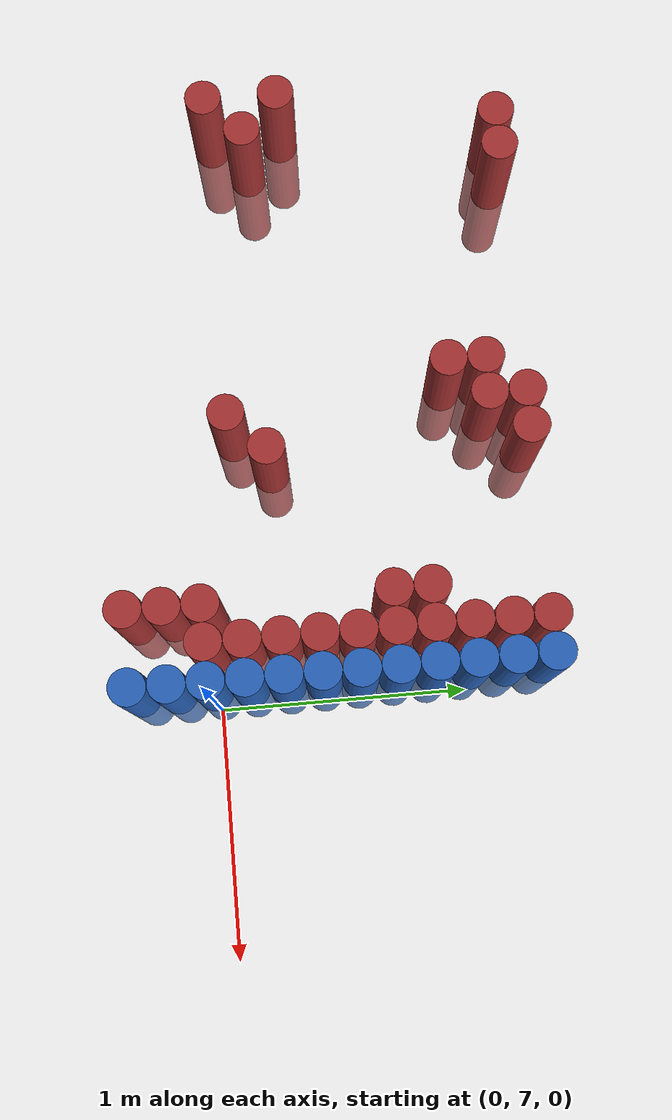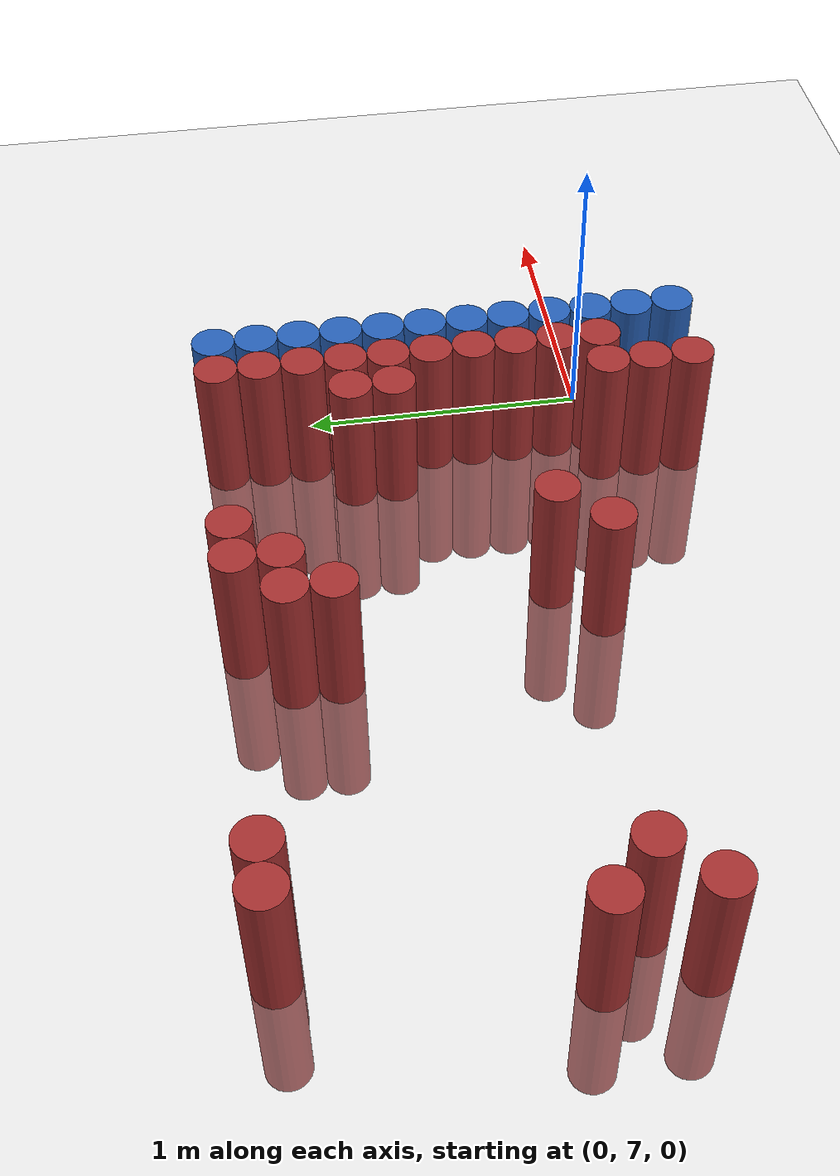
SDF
<sdf version="1.6">
 <world name="default">
  <model name="ground_plane">
   <static>1</static>
   <link name="link">
    <collision name="collision">
     <geometry><plane><normal>0 0 1</normal><size>100 100</size></plane></geometry>
     <surface><friction><ode><mu>100</mu><mu2>50</mu2></ode></friction></surface>
    </collision>
    <visual name="visual">
     <cast_shadows>0</cast_shadows>
     <geometry><plane><normal>0 0 1</normal><size>100 100</size></plane></geometry>
     <material>
      <script><uri>file://media/materials/scripts/gazebo.material</uri><name>Gazebo/Grey</name></script>
     </material>
    </visual>
   </link>
  </model>
  <model name="unit_cylinder_207">
   <static>1</static>
   <pose>-2.475000 7.125000 0.000000 0.000000 0.000000 0.000000</pose>
   <link name="link">
    <inertial>
     <mass>1</mass>
     <inertia><ixx>0.145833</ixx><ixy>0</ixy><ixz>0</ixz><iyy>0.145833</iyy><iyz>0</iyz><izz>0.125</izz></inertia>
    </inertial>
    <collision name="collision">
     <geometry><cylinder><radius>0.075000</radius><length>1</length></cylinder></geometry>
    </collision>
    <visual name="visual">
     <geometry><cylinder><radius>0.075000</radius><length>1</length></cylinder></geometry>
     <material>
      <ambient>0.648000 0.192000 0.192000 1</ambient>
      <diffuse>0.648000 0.192000 0.192000 1</diffuse>
     </material>
     <material>
      <script><name>Gazebo/Grey</name><uri>file://media/materials/scripts/gazebo.material</uri></script>
     </material>
    </visual>
    <sensor name="sensor_contact" type="contact"><contact><collision>collision</collision></contact></sensor>
   </link>
   <plugin filename="gz-sim-touchplugin-system" name="gz::sim::systems::TouchPlugin">
    <target>robot</target>
    <namespace>robot</namespace>
    <time>0.001</time>
    <enabled>true</enabled>
   </plugin>
  </model>
  <model name="unit_cylinder_208">
   <static>1</static>
   <pose>-2.475000 7.425000 0.000000 0.000000 0.000000 0.000000</pose>
   <link name="link">
    <inertial>
     <mass>1</mass>
     <inertia><ixx>0.145833</ixx><ixy>0</ixy><ixz>0</ixz><iyy>0.145833</iyy><iyz>0</iyz><izz>0.125</izz></inertia>
    </inertial>
    <collision name="collision">
     <geometry><cylinder><radius>0.075000</radius><length>1</length></cylinder></geometry>
    </collision>
    <visual name="visual">
     <geometry><cylinder><radius>0.075000</radius><length>1</length></cylinder></geometry>
     <material>
      <ambient>0.648000 0.192000 0.192000 1</ambient>
      <diffuse>0.648000 0.192000 0.192000 1</diffuse>
     </material>
     <material>
      <script><name>Gazebo/Grey</name><uri>file://media/materials/scripts/gazebo.material</uri></script>
     </material>
    </visual>
    <sensor name="sensor_contact" type="contact"><contact><collision>collision</collision></contact></sensor>
   </link>
   <plugin filename="gz-sim-touchplugin-system" name="gz::sim::systems::TouchPlugin">
    <target>robot</target>
    <namespace>robot</namespace>
    <time>0.001</time>
    <enabled>true</enabled>
   </plugin>
  </model>
  <model name="unit_cylinder_212">
   <static>1</static>
   <pose>-2.325000 7.275000 0.000000 0.000000 0.000000 0.000000</pose>
   <link name="link">
    <inertial>
     <mass>1</mass>
     <inertia><ixx>0.145833</ixx><ixy>0</ixy><ixz>0</ixz><iyy>0.145833</iyy><iyz>0</iyz><izz>0.125</izz></inertia>
    </inertial>
    <collision name="collision">
     <geometry><cylinder><radius>0.075000</radius><length>1</length></cylinder></geometry>
    </collision>
    <visual name="visual">
     <geometry><cylinder><radius>0.075000</radius><length>1</length></cylinder></geometry>
     <material>
      <ambient>0.648000 0.192000 0.192000 1</ambient>
      <diffuse>0.648000 0.192000 0.192000 1</diffuse>
     </material>
     <material>
      <script><name>Gazebo/Grey</name><uri>file://media/materials/scripts/gazebo.material</uri></script>
     </material>
    </visual>
    <sensor name="sensor_contact" type="contact"><contact><collision>collision</collision></contact></sensor>
   </link>
   <plugin filename="gz-sim-touchplugin-system" name="gz::sim::systems::TouchPlugin">
    <target>robot</target>
    <namespace>robot</namespace>
    <time>0.001</time>
    <enabled>true</enabled>
   </plugin>
  </model>
  <model name="unit_cylinder_213">
   <static>1</static>
   <pose>-2.325000 8.325000 0.000000 0.000000 0.000000 0.000000</pose>
   <link name="link">
    <inertial>
     <mass>1</mass>
     <inertia><ixx>0.145833</ixx><ixy>0</ixy><ixz>0</ixz><iyy>0.145833</iyy><iyz>0</iyz><izz>0.125</izz></inertia>
    </inertial>
    <collision name="collision">
     <geometry><cylinder><radius>0.075000</radius><length>1</length></cylinder></geometry>
    </collision>
    <visual name="visual">
     <geometry><cylinder><radius>0.075000</radius><length>1</length></cylinder></geometry>
     <material>
      <ambient>0.648000 0.192000 0.192000 1</ambient>
      <diffuse>0.648000 0.192000 0.192000 1</diffuse>
     </material>
     <material>
      <script><name>Gazebo/Grey</name><uri>file://media/materials/scripts/gazebo.material</uri></script>
     </material>
    </visual>
    <sensor name="sensor_contact" type="contact"><contact><collision>collision</collision></contact></sensor>
   </link>
   <plugin filename="gz-sim-touchplugin-system" name="gz::sim::systems::TouchPlugin">
    <target>robot</target>
    <namespace>robot</namespace>
    <time>0.001</time>
    <enabled>true</enabled>
   </plugin>
  </model>
  <model name="unit_cylinder_221">
   <static>1</static>
   <pose>-2.175000 8.325000 0.000000 0.000000 0.000000 0.000000</pose>
   <link name="link">
    <inertial>
     <mass>1</mass>
     <inertia><ixx>0.145833</ixx><ixy>0</ixy><ixz>0</ixz><iyy>0.145833</iyy><iyz>0</iyz><izz>0.125</izz></inertia>
    </inertial>
    <collision name="collision">
     <geometry><cylinder><radius>0.075000</radius><length>1</length></cylinder></geometry>
    </collision>
    <visual name="visual">
     <geometry><cylinder><radius>0.075000</radius><length>1</length></cylinder></geometry>
     <material>
      <ambient>0.648000 0.192000 0.192000 1</ambient>
      <diffuse>0.648000 0.192000 0.192000 1</diffuse>
     </material>
     <material>
      <script><name>Gazebo/Grey</name><uri>file://media/materials/scripts/gazebo.material</uri></script>
     </material>
    </visual>
    <sensor name="sensor_contact" type="contact"><contact><collision>collision</collision></contact></sensor>
   </link>
   <plugin filename="gz-sim-touchplugin-system" name="gz::sim::systems::TouchPlugin">
    <target>robot</target>
    <namespace>robot</namespace>
    <time>0.001</time>
    <enabled>true</enabled>
   </plugin>
  </model>
  <model name="unit_cylinder_238">
   <static>1</static>
   <pose>-1.275000 8.025000 0.000000 0.000000 0.000000 0.000000</pose>
   <link name="link">
    <inertial>
     <mass>1</mass>
     <inertia><ixx>0.145833</ixx><ixy>0</ixy><ixz>0</ixz><iyy>0.145833</iyy><iyz>0</iyz><izz>0.125</izz></inertia>
    </inertial>
    <collision name="collision">
     <geometry><cylinder><radius>0.075000</radius><length>1</length></cylinder></geometry>
    </collision>
    <visual name="visual">
     <geometry><cylinder><radius>0.075000</radius><length>1</length></cylinder></geometry>
     <material>
      <ambient>0.648000 0.192000 0.192000 1</ambient>
      <diffuse>0.648000 0.192000 0.192000 1</diffuse>
     </material>
     <material>
      <script><name>Gazebo/Grey</name><uri>file://media/materials/scripts/gazebo.material</uri></script>
     </material>
    </visual>
    <sensor name="sensor_contact" type="contact"><contact><collision>collision</collision></contact></sensor>
   </link>
   <plugin filename="gz-sim-touchplugin-system" name="gz::sim::systems::TouchPlugin">
    <target>robot</target>
    <namespace>robot</namespace>
    <time>0.001</time>
    <enabled>true</enabled>
   </plugin>
  </model>
  <model name="unit_cylinder_239">
   <static>1</static>
   <pose>-1.275000 8.175000 0.000000 0.000000 0.000000 0.000000</pose>
   <link name="link">
    <inertial>
     <mass>1</mass>
     <inertia><ixx>0.145833</ixx><ixy>0</ixy><ixz>0</ixz><iyy>0.145833</iyy><iyz>0</iyz><izz>0.125</izz></inertia>
    </inertial>
    <collision name="collision">
     <geometry><cylinder><radius>0.075000</radius><length>1</length></cylinder></geometry>
    </collision>
    <visual name="visual">
     <geometry><cylinder><radius>0.075000</radius><length>1</length></cylinder></geometry>
     <material>
      <ambient>0.648000 0.192000 0.192000 1</ambient>
      <diffuse>0.648000 0.192000 0.192000 1</diffuse>
     </material>
     <material>
      <script><name>Gazebo/Grey</name><uri>file://media/materials/scripts/gazebo.material</uri></script>
     </material>
    </visual>
    <sensor name="sensor_contact" type="contact"><contact><collision>collision</collision></contact></sensor>
   </link>
   <plugin filename="gz-sim-touchplugin-system" name="gz::sim::systems::TouchPlugin">
    <target>robot</target>
    <namespace>robot</namespace>
    <time>0.001</time>
    <enabled>true</enabled>
   </plugin>
  </model>
  <model name="unit_cylinder_240">
   <static>1</static>
   <pose>-1.125000 7.125000 0.000000 0.000000 0.000000 0.000000</pose>
   <link name="link">
    <inertial>
     <mass>1</mass>
     <inertia><ixx>0.145833</ixx><ixy>0</ixy><ixz>0</ixz><iyy>0.145833</iyy><iyz>0</iyz><izz>0.125</izz></inertia>
    </inertial>
    <collision name="collision">
     <geometry><cylinder><radius>0.075000</radius><length>1</length></cylinder></geometry>
    </collision>
    <visual name="visual">
     <geometry><cylinder><radius>0.075000</radius><length>1</length></cylinder></geometry>
     <material>
      <ambient>0.648000 0.192000 0.192000 1</ambient>
      <diffuse>0.648000 0.192000 0.192000 1</diffuse>
     </material>
     <material>
      <script><name>Gazebo/Grey</name><uri>file://media/materials/scripts/gazebo.material</uri></script>
     </material>
    </visual>
    <sensor name="sensor_contact" type="contact"><contact><collision>collision</collision></contact></sensor>
   </link>
   <plugin filename="gz-sim-touchplugin-system" name="gz::sim::systems::TouchPlugin">
    <target>robot</target>
    <namespace>robot</namespace>
    <time>0.001</time>
    <enabled>true</enabled>
   </plugin>
  </model>
  <model name="unit_cylinder_241">
   <static>1</static>
   <pose>-1.125000 8.175000 0.000000 0.000000 0.000000 0.000000</pose>
   <link name="link">
    <inertial>
     <mass>1</mass>
     <inertia><ixx>0.145833</ixx><ixy>0</ixy><ixz>0</ixz><iyy>0.145833</iyy><iyz>0</iyz><izz>0.125</izz></inertia>
    </inertial>
    <collision name="collision">
     <geometry><cylinder><radius>0.075000</radius><length>1</length></cylinder></geometry>
    </collision>
    <visual name="visual">
     <geometry><cylinder><radius>0.075000</radius><length>1</length></cylinder></geometry>
     <material>
      <ambient>0.648000 0.192000 0.192000 1</ambient>
      <diffuse>0.648000 0.192000 0.192000 1</diffuse>
     </material>
     <material>
      <script><name>Gazebo/Grey</name><uri>file://media/materials/scripts/gazebo.material</uri></script>
     </material>
    </visual>
    <sensor name="sensor_contact" type="contact"><contact><collision>collision</collision></contact></sensor>
   </link>
   <plugin filename="gz-sim-touchplugin-system" name="gz::sim::systems::TouchPlugin">
    <target>robot</target>
    <namespace>robot</namespace>
    <time>0.001</time>
    <enabled>true</enabled>
   </plugin>
  </model>
  <model name="unit_cylinder_242">
   <static>1</static>
   <pose>-1.125000 8.325000 0.000000 0.000000 0.000000 0.000000</pose>
   <link name="link">
    <inertial>
     <mass>1</mass>
     <inertia><ixx>0.145833</ixx><ixy>0</ixy><ixz>0</ixz><iyy>0.145833</iyy><iyz>0</iyz><izz>0.125</izz></inertia>
    </inertial>
    <collision name="collision">
     <geometry><cylinder><radius>0.075000</radius><length>1</length></cylinder></geometry>
    </collision>
    <visual name="visual">
     <geometry><cylinder><radius>0.075000</radius><length>1</length></cylinder></geometry>
     <material>
      <ambient>0.648000 0.192000 0.192000 1</ambient>
      <diffuse>0.648000 0.192000 0.192000 1</diffuse>
     </material>
     <material>
      <script><name>Gazebo/Grey</name><uri>file://media/materials/scripts/gazebo.material</uri></script>
     </material>
    </visual>
    <sensor name="sensor_contact" type="contact"><contact><collision>collision</collision></contact></sensor>
   </link>
   <plugin filename="gz-sim-touchplugin-system" name="gz::sim::systems::TouchPlugin">
    <target>robot</target>
    <namespace>robot</namespace>
    <time>0.001</time>
    <enabled>true</enabled>
   </plugin>
  </model>
  <model name="unit_cylinder_244">
   <static>1</static>
   <pose>-0.975000 7.275000 0.000000 0.000000 0.000000 0.000000</pose>
   <link name="link">
    <inertial>
     <mass>1</mass>
     <inertia><ixx>0.145833</ixx><ixy>0</ixy><ixz>0</ixz><iyy>0.145833</iyy><iyz>0</iyz><izz>0.125</izz></inertia>
    </inertial>
    <collision name="collision">
     <geometry><cylinder><radius>0.075000</radius><length>1</length></cylinder></geometry>
    </collision>
    <visual name="visual">
     <geometry><cylinder><radius>0.075000</radius><length>1</length></cylinder></geometry>
     <material>
      <ambient>0.648000 0.192000 0.192000 1</ambient>
      <diffuse>0.648000 0.192000 0.192000 1</diffuse>
     </material>
     <material>
      <script><name>Gazebo/Grey</name><uri>file://media/materials/scripts/gazebo.material</uri></script>
     </material>
    </visual>
    <sensor name="sensor_contact" type="contact"><contact><collision>collision</collision></contact></sensor>
   </link>
   <plugin filename="gz-sim-touchplugin-system" name="gz::sim::systems::TouchPlugin">
    <target>robot</target>
    <namespace>robot</namespace>
    <time>0.001</time>
    <enabled>true</enabled>
   </plugin>
  </model>
  <model name="unit_cylinder_245">
   <static>1</static>
   <pose>-0.975000 8.325000 0.000000 0.000000 0.000000 0.000000</pose>
   <link name="link">
    <inertial>
     <mass>1</mass>
     <inertia><ixx>0.145833</ixx><ixy>0</ixy><ixz>0</ixz><iyy>0.145833</iyy><iyz>0</iyz><izz>0.125</izz></inertia>
    </inertial>
    <collision name="collision">
     <geometry><cylinder><radius>0.075000</radius><length>1</length></cylinder></geometry>
    </collision>
    <visual name="visual">
     <geometry><cylinder><radius>0.075000</radius><length>1</length></cylinder></geometry>
     <material>
      <ambient>0.648000 0.192000 0.192000 1</ambient>
      <diffuse>0.648000 0.192000 0.192000 1</diffuse>
     </material>
     <material>
      <script><name>Gazebo/Grey</name><uri>file://media/materials/scripts/gazebo.material</uri></script>
     </material>
    </visual>
    <sensor name="sensor_contact" type="contact"><contact><collision>collision</collision></contact></sensor>
   </link>
   <plugin filename="gz-sim-touchplugin-system" name="gz::sim::systems::TouchPlugin">
    <target>robot</target>
    <namespace>robot</namespace>
    <time>0.001</time>
    <enabled>true</enabled>
   </plugin>
  </model>
  <model name="unit_cylinder_261">
   <static>1</static>
   <pose>-0.375000 6.675000 0.000000 0.000000 0.000000 0.000000</pose>
   <link name="link">
    <inertial>
     <mass>1</mass>
     <inertia><ixx>0.145833</ixx><ixy>0</ixy><ixz>0</ixz><iyy>0.145833</iyy><iyz>0</iyz><izz>0.125</izz></inertia>
    </inertial>
    <collision name="collision">
     <geometry><cylinder><radius>0.075000</radius><length>1</length></cylinder></geometry>
    </collision>
    <visual name="visual">
     <geometry><cylinder><radius>0.075000</radius><length>1</length></cylinder></geometry>
     <material>
      <ambient>0.648000 0.192000 0.192000 1</ambient>
      <diffuse>0.648000 0.192000 0.192000 1</diffuse>
     </material>
     <material>
      <script><name>Gazebo/Grey</name><uri>file://media/materials/scripts/gazebo.material</uri></script>
     </material>
    </visual>
    <sensor name="sensor_contact" type="contact"><contact><collision>collision</collision></contact></sensor>
   </link>
   <plugin filename="gz-sim-touchplugin-system" name="gz::sim::systems::TouchPlugin">
    <target>robot</target>
    <namespace>robot</namespace>
    <time>0.001</time>
    <enabled>true</enabled>
   </plugin>
  </model>
  <model name="unit_cylinder_262">
   <static>1</static>
   <pose>-0.375000 6.825000 0.000000 0.000000 0.000000 0.000000</pose>
   <link name="link">
    <inertial>
     <mass>1</mass>
     <inertia><ixx>0.145833</ixx><ixy>0</ixy><ixz>0</ixz><iyy>0.145833</iyy><iyz>0</iyz><izz>0.125</izz></inertia>
    </inertial>
    <collision name="collision">
     <geometry><cylinder><radius>0.075000</radius><length>1</length></cylinder></geometry>
    </collision>
    <visual name="visual">
     <geometry><cylinder><radius>0.075000</radius><length>1</length></cylinder></geometry>
     <material>
      <ambient>0.648000 0.192000 0.192000 1</ambient>
      <diffuse>0.648000 0.192000 0.192000 1</diffuse>
     </material>
     <material>
      <script><name>Gazebo/Grey</name><uri>file://media/materials/scripts/gazebo.material</uri></script>
     </material>
    </visual>
    <sensor name="sensor_contact" type="contact"><contact><collision>collision</collision></contact></sensor>
   </link>
   <plugin filename="gz-sim-touchplugin-system" name="gz::sim::systems::TouchPlugin">
    <target>robot</target>
    <namespace>robot</namespace>
    <time>0.001</time>
    <enabled>true</enabled>
   </plugin>
  </model>
  <model name="unit_cylinder_263">
   <static>1</static>
   <pose>-0.375000 6.975000 0.000000 0.000000 0.000000 0.000000</pose>
   <link name="link">
    <inertial>
     <mass>1</mass>
     <inertia><ixx>0.145833</ixx><ixy>0</ixy><ixz>0</ixz><iyy>0.145833</iyy><iyz>0</iyz><izz>0.125</izz></inertia>
    </inertial>
    <collision name="collision">
     <geometry><cylinder><radius>0.075000</radius><length>1</length></cylinder></geometry>
    </collision>
    <visual name="visual">
     <geometry><cylinder><radius>0.075000</radius><length>1</length></cylinder></geometry>
     <material>
      <ambient>0.648000 0.192000 0.192000 1</ambient>
      <diffuse>0.648000 0.192000 0.192000 1</diffuse>
     </material>
     <material>
      <script><name>Gazebo/Grey</name><uri>file://media/materials/scripts/gazebo.material</uri></script>
     </material>
    </visual>
    <sensor name="sensor_contact" type="contact"><contact><collision>collision</collision></contact></sensor>
   </link>
   <plugin filename="gz-sim-touchplugin-system" name="gz::sim::systems::TouchPlugin">
    <target>robot</target>
    <namespace>robot</namespace>
    <time>0.001</time>
    <enabled>true</enabled>
   </plugin>
  </model>
  <model name="unit_cylinder_264">
   <static>1</static>
   <pose>-0.375000 7.725000 0.000000 0.000000 0.000000 0.000000</pose>
   <link name="link">
    <inertial>
     <mass>1</mass>
     <inertia><ixx>0.145833</ixx><ixy>0</ixy><ixz>0</ixz><iyy>0.145833</iyy><iyz>0</iyz><izz>0.125</izz></inertia>
    </inertial>
    <collision name="collision">
     <geometry><cylinder><radius>0.075000</radius><length>1</length></cylinder></geometry>
    </collision>
    <visual name="visual">
     <geometry><cylinder><radius>0.075000</radius><length>1</length></cylinder></geometry>
     <material>
      <ambient>0.648000 0.192000 0.192000 1</ambient>
      <diffuse>0.648000 0.192000 0.192000 1</diffuse>
     </material>
     <material>
      <script><name>Gazebo/Grey</name><uri>file://media/materials/scripts/gazebo.material</uri></script>
     </material>
    </visual>
    <sensor name="sensor_contact" type="contact"><contact><collision>collision</collision></contact></sensor>
   </link>
   <plugin filename="gz-sim-touchplugin-system" name="gz::sim::systems::TouchPlugin">
    <target>robot</target>
    <namespace>robot</namespace>
    <time>0.001</time>
    <enabled>true</enabled>
   </plugin>
  </model>
  <model name="unit_cylinder_265">
   <static>1</static>
   <pose>-0.375000 7.875000 0.000000 0.000000 0.000000 0.000000</pose>
   <link name="link">
    <inertial>
     <mass>1</mass>
     <inertia><ixx>0.145833</ixx><ixy>0</ixy><ixz>0</ixz><iyy>0.145833</iyy><iyz>0</iyz><izz>0.125</izz></inertia>
    </inertial>
    <collision name="collision">
     <geometry><cylinder><radius>0.075000</radius><length>1</length></cylinder></geometry>
    </collision>
    <visual name="visual">
     <geometry><cylinder><radius>0.075000</radius><length>1</length></cylinder></geometry>
     <material>
      <ambient>0.648000 0.192000 0.192000 1</ambient>
      <diffuse>0.648000 0.192000 0.192000 1</diffuse>
     </material>
     <material>
      <script><name>Gazebo/Grey</name><uri>file://media/materials/scripts/gazebo.material</uri></script>
     </material>
    </visual>
    <sensor name="sensor_contact" type="contact"><contact><collision>collision</collision></contact></sensor>
   </link>
   <plugin filename="gz-sim-touchplugin-system" name="gz::sim::systems::TouchPlugin">
    <target>robot</target>
    <namespace>robot</namespace>
    <time>0.001</time>
    <enabled>true</enabled>
   </plugin>
  </model>
  <model name="unit_cylinder_269">
   <static>1</static>
   <pose>-0.225000 6.975000 0.000000 0.000000 0.000000 0.000000</pose>
   <link name="link">
    <inertial>
     <mass>1</mass>
     <inertia><ixx>0.145833</ixx><ixy>0</ixy><ixz>0</ixz><iyy>0.145833</iyy><iyz>0</iyz><izz>0.125</izz></inertia>
    </inertial>
    <collision name="collision">
     <geometry><cylinder><radius>0.075000</radius><length>1</length></cylinder></geometry>
    </collision>
    <visual name="visual">
     <geometry><cylinder><radius>0.075000</radius><length>1</length></cylinder></geometry>
     <material>
      <ambient>0.648000 0.192000 0.192000 1</ambient>
      <diffuse>0.648000 0.192000 0.192000 1</diffuse>
     </material>
     <material>
      <script><name>Gazebo/Grey</name><uri>file://media/materials/scripts/gazebo.material</uri></script>
     </material>
    </visual>
    <sensor name="sensor_contact" type="contact"><contact><collision>collision</collision></contact></sensor>
   </link>
   <plugin filename="gz-sim-touchplugin-system" name="gz::sim::systems::TouchPlugin">
    <target>robot</target>
    <namespace>robot</namespace>
    <time>0.001</time>
    <enabled>true</enabled>
   </plugin>
  </model>
  <model name="unit_cylinder_270">
   <static>1</static>
   <pose>-0.225000 7.125000 0.000000 0.000000 0.000000 0.000000</pose>
   <link name="link">
    <inertial>
     <mass>1</mass>
     <inertia><ixx>0.145833</ixx><ixy>0</ixy><ixz>0</ixz><iyy>0.145833</iyy><iyz>0</iyz><izz>0.125</izz></inertia>
    </inertial>
    <collision name="collision">
     <geometry><cylinder><radius>0.075000</radius><length>1</length></cylinder></geometry>
    </collision>
    <visual name="visual">
     <geometry><cylinder><radius>0.075000</radius><length>1</length></cylinder></geometry>
     <material>
      <ambient>0.648000 0.192000 0.192000 1</ambient>
      <diffuse>0.648000 0.192000 0.192000 1</diffuse>
     </material>
     <material>
      <script><name>Gazebo/Grey</name><uri>file://media/materials/scripts/gazebo.material</uri></script>
     </material>
    </visual>
    <sensor name="sensor_contact" type="contact"><contact><collision>collision</collision></contact></sensor>
   </link>
   <plugin filename="gz-sim-touchplugin-system" name="gz::sim::systems::TouchPlugin">
    <target>robot</target>
    <namespace>robot</namespace>
    <time>0.001</time>
    <enabled>true</enabled>
   </plugin>
  </model>
  <model name="unit_cylinder_271">
   <static>1</static>
   <pose>-0.225000 7.275000 0.000000 0.000000 0.000000 0.000000</pose>
   <link name="link">
    <inertial>
     <mass>1</mass>
     <inertia><ixx>0.145833</ixx><ixy>0</ixy><ixz>0</ixz><iyy>0.145833</iyy><iyz>0</iyz><izz>0.125</izz></inertia>
    </inertial>
    <collision name="collision">
     <geometry><cylinder><radius>0.075000</radius><length>1</length></cylinder></geometry>
    </collision>
    <visual name="visual">
     <geometry><cylinder><radius>0.075000</radius><length>1</length></cylinder></geometry>
     <material>
      <ambient>0.648000 0.192000 0.192000 1</ambient>
      <diffuse>0.648000 0.192000 0.192000 1</diffuse>
     </material>
     <material>
      <script><name>Gazebo/Grey</name><uri>file://media/materials/scripts/gazebo.material</uri></script>
     </material>
    </visual>
    <sensor name="sensor_contact" type="contact"><contact><collision>collision</collision></contact></sensor>
   </link>
   <plugin filename="gz-sim-touchplugin-system" name="gz::sim::systems::TouchPlugin">
    <target>robot</target>
    <namespace>robot</namespace>
    <time>0.001</time>
    <enabled>true</enabled>
   </plugin>
  </model>
  <model name="unit_cylinder_272">
   <static>1</static>
   <pose>-0.225000 7.425000 0.000000 0.000000 0.000000 0.000000</pose>
   <link name="link">
    <inertial>
     <mass>1</mass>
     <inertia><ixx>0.145833</ixx><ixy>0</ixy><ixz>0</ixz><iyy>0.145833</iyy><iyz>0</iyz><izz>0.125</izz></inertia>
    </inertial>
    <collision name="collision">
     <geometry><cylinder><radius>0.075000</radius><length>1</length></cylinder></geometry>
    </collision>
    <visual name="visual">
     <geometry><cylinder><radius>0.075000</radius><length>1</length></cylinder></geometry>
     <material>
      <ambient>0.648000 0.192000 0.192000 1</ambient>
      <diffuse>0.648000 0.192000 0.192000 1</diffuse>
     </material>
     <material>
      <script><name>Gazebo/Grey</name><uri>file://media/materials/scripts/gazebo.material</uri></script>
     </material>
    </visual>
    <sensor name="sensor_contact" type="contact"><contact><collision>collision</collision></contact></sensor>
   </link>
   <plugin filename="gz-sim-touchplugin-system" name="gz::sim::systems::TouchPlugin">
    <target>robot</target>
    <namespace>robot</namespace>
    <time>0.001</time>
    <enabled>true</enabled>
   </plugin>
  </model>
  <model name="unit_cylinder_273">
   <static>1</static>
   <pose>-0.225000 7.575000 0.000000 0.000000 0.000000 0.000000</pose>
   <link name="link">
    <inertial>
     <mass>1</mass>
     <inertia><ixx>0.145833</ixx><ixy>0</ixy><ixz>0</ixz><iyy>0.145833</iyy><iyz>0</iyz><izz>0.125</izz></inertia>
    </inertial>
    <collision name="collision">
     <geometry><cylinder><radius>0.075000</radius><length>1</length></cylinder></geometry>
    </collision>
    <visual name="visual">
     <geometry><cylinder><radius>0.075000</radius><length>1</length></cylinder></geometry>
     <material>
      <ambient>0.648000 0.192000 0.192000 1</ambient>
      <diffuse>0.648000 0.192000 0.192000 1</diffuse>
     </material>
     <material>
      <script><name>Gazebo/Grey</name><uri>file://media/materials/scripts/gazebo.material</uri></script>
     </material>
    </visual>
    <sensor name="sensor_contact" type="contact"><contact><collision>collision</collision></contact></sensor>
   </link>
   <plugin filename="gz-sim-touchplugin-system" name="gz::sim::systems::TouchPlugin">
    <target>robot</target>
    <namespace>robot</namespace>
    <time>0.001</time>
    <enabled>true</enabled>
   </plugin>
  </model>
  <model name="unit_cylinder_274">
   <static>1</static>
   <pose>-0.225000 7.725000 0.000000 0.000000 0.000000 0.000000</pose>
   <link name="link">
    <inertial>
     <mass>1</mass>
     <inertia><ixx>0.145833</ixx><ixy>0</ixy><ixz>0</ixz><iyy>0.145833</iyy><iyz>0</iyz><izz>0.125</izz></inertia>
    </inertial>
    <collision name="collision">
     <geometry><cylinder><radius>0.075000</radius><length>1</length></cylinder></geometry>
    </collision>
    <visual name="visual">
     <geometry><cylinder><radius>0.075000</radius><length>1</length></cylinder></geometry>
     <material>
      <ambient>0.648000 0.192000 0.192000 1</ambient>
      <diffuse>0.648000 0.192000 0.192000 1</diffuse>
     </material>
     <material>
      <script><name>Gazebo/Grey</name><uri>file://media/materials/scripts/gazebo.material</uri></script>
     </material>
    </visual>
    <sensor name="sensor_contact" type="contact"><contact><collision>collision</collision></contact></sensor>
   </link>
   <plugin filename="gz-sim-touchplugin-system" name="gz::sim::systems::TouchPlugin">
    <target>robot</target>
    <namespace>robot</namespace>
    <time>0.001</time>
    <enabled>true</enabled>
   </plugin>
  </model>
  <model name="unit_cylinder_275">
   <static>1</static>
   <pose>-0.225000 7.875000 0.000000 0.000000 0.000000 0.000000</pose>
   <link name="link">
    <inertial>
     <mass>1</mass>
     <inertia><ixx>0.145833</ixx><ixy>0</ixy><ixz>0</ixz><iyy>0.145833</iyy><iyz>0</iyz><izz>0.125</izz></inertia>
    </inertial>
    <collision name="collision">
     <geometry><cylinder><radius>0.075000</radius><length>1</length></cylinder></geometry>
    </collision>
    <visual name="visual">
     <geometry><cylinder><radius>0.075000</radius><length>1</length></cylinder></geometry>
     <material>
      <ambient>0.648000 0.192000 0.192000 1</ambient>
      <diffuse>0.648000 0.192000 0.192000 1</diffuse>
     </material>
     <material>
      <script><name>Gazebo/Grey</name><uri>file://media/materials/scripts/gazebo.material</uri></script>
     </material>
    </visual>
    <sensor name="sensor_contact" type="contact"><contact><collision>collision</collision></contact></sensor>
   </link>
   <plugin filename="gz-sim-touchplugin-system" name="gz::sim::systems::TouchPlugin">
    <target>robot</target>
    <namespace>robot</namespace>
    <time>0.001</time>
    <enabled>true</enabled>
   </plugin>
  </model>
  <model name="unit_cylinder_276">
   <static>1</static>
   <pose>-0.225000 8.025000 0.000000 0.000000 0.000000 0.000000</pose>
   <link name="link">
    <inertial>
     <mass>1</mass>
     <inertia><ixx>0.145833</ixx><ixy>0</ixy><ixz>0</ixz><iyy>0.145833</iyy><iyz>0</iyz><izz>0.125</izz></inertia>
    </inertial>
    <collision name="collision">
     <geometry><cylinder><radius>0.075000</radius><length>1</length></cylinder></geometry>
    </collision>
    <visual name="visual">
     <geometry><cylinder><radius>0.075000</radius><length>1</length></cylinder></geometry>
     <material>
      <ambient>0.648000 0.192000 0.192000 1</ambient>
      <diffuse>0.648000 0.192000 0.192000 1</diffuse>
     </material>
     <material>
      <script><name>Gazebo/Grey</name><uri>file://media/materials/scripts/gazebo.material</uri></script>
     </material>
    </visual>
    <sensor name="sensor_contact" type="contact"><contact><collision>collision</collision></contact></sensor>
   </link>
   <plugin filename="gz-sim-touchplugin-system" name="gz::sim::systems::TouchPlugin">
    <target>robot</target>
    <namespace>robot</namespace>
    <time>0.001</time>
    <enabled>true</enabled>
   </plugin>
  </model>
  <model name="unit_cylinder_277">
   <static>1</static>
   <pose>-0.225000 8.175000 0.000000 0.000000 0.000000 0.000000</pose>
   <link name="link">
    <inertial>
     <mass>1</mass>
     <inertia><ixx>0.145833</ixx><ixy>0</ixy><ixz>0</ixz><iyy>0.145833</iyy><iyz>0</iyz><izz>0.125</izz></inertia>
    </inertial>
    <collision name="collision">
     <geometry><cylinder><radius>0.075000</radius><length>1</length></cylinder></geometry>
    </collision>
    <visual name="visual">
     <geometry><cylinder><radius>0.075000</radius><length>1</length></cylinder></geometry>
     <material>
      <ambient>0.648000 0.192000 0.192000 1</ambient>
      <diffuse>0.648000 0.192000 0.192000 1</diffuse>
     </material>
     <material>
      <script><name>Gazebo/Grey</name><uri>file://media/materials/scripts/gazebo.material</uri></script>
     </material>
    </visual>
    <sensor name="sensor_contact" type="contact"><contact><collision>collision</collision></contact></sensor>
   </link>
   <plugin filename="gz-sim-touchplugin-system" name="gz::sim::systems::TouchPlugin">
    <target>robot</target>
    <namespace>robot</namespace>
    <time>0.001</time>
    <enabled>true</enabled>
   </plugin>
  </model>
  <model name="unit_cylinder_278">
   <static>1</static>
   <pose>-0.225000 8.325000 0.000000 0.000000 0.000000 0.000000</pose>
   <link name="link">
    <inertial>
     <mass>1</mass>
     <inertia><ixx>0.145833</ixx><ixy>0</ixy><ixz>0</ixz><iyy>0.145833</iyy><iyz>0</iyz><izz>0.125</izz></inertia>
    </inertial>
    <collision name="collision">
     <geometry><cylinder><radius>0.075000</radius><length>1</length></cylinder></geometry>
    </collision>
    <visual name="visual">
     <geometry><cylinder><radius>0.075000</radius><length>1</length></cylinder></geometry>
     <material>
      <ambient>0.648000 0.192000 0.192000 1</ambient>
      <diffuse>0.648000 0.192000 0.192000 1</diffuse>
     </material>
     <material>
      <script><name>Gazebo/Grey</name><uri>file://media/materials/scripts/gazebo.material</uri></script>
     </material>
    </visual>
    <sensor name="sensor_contact" type="contact"><contact><collision>collision</collision></contact></sensor>
   </link>
   <plugin filename="gz-sim-touchplugin-system" name="gz::sim::systems::TouchPlugin">
    <target>robot</target>
    <namespace>robot</namespace>
    <time>0.001</time>
    <enabled>true</enabled>
   </plugin>
  </model>
  <model name="unit_cylinder_295">
   <static>1</static>
   <pose>-0.075000 6.675000 0.000000 0.000000 0.000000 0.000000</pose>
   <link name="link">
    <inertial>
     <mass>1</mass>
     <inertia><ixx>0.145833</ixx><ixy>0</ixy><ixz>0</ixz><iyy>0.145833</iyy><iyz>0</iyz><izz>0.125</izz></inertia>
    </inertial>
    <collision name="collision">
     <geometry><cylinder><radius>0.075000</radius><length>1</length></cylinder></geometry>
    </collision>
    <visual name="visual">
     <geometry><cylinder><radius>0.075000</radius><length>1</length></cylinder></geometry>
     <material>
      <ambient>0.152000 0.379000 0.720000 1</ambient>
      <diffuse>0.152000 0.379000 0.720000 1</diffuse>
     </material>
     <material>
      <script><name>Gazebo/Grey</name><uri>file://media/materials/scripts/gazebo.material</uri></script>
     </material>
    </visual>
    <sensor name="sensor_contact" type="contact"><contact><collision>collision</collision></contact></sensor>
   </link>
   <plugin filename="gz-sim-touchplugin-system" name="gz::sim::systems::TouchPlugin">
    <target>robot</target>
    <namespace>robot</namespace>
    <time>0.001</time>
    <enabled>true</enabled>
   </plugin>
  </model>
  <model name="unit_cylinder_296">
   <static>1</static>
   <pose>-0.075000 6.825000 0.000000 0.000000 0.000000 0.000000</pose>
   <link name="link">
    <inertial>
     <mass>1</mass>
     <inertia><ixx>0.145833</ixx><ixy>0</ixy><ixz>0</ixz><iyy>0.145833</iyy><iyz>0</iyz><izz>0.125</izz></inertia>
    </inertial>
    <collision name="collision">
     <geometry><cylinder><radius>0.075000</radius><length>1</length></cylinder></geometry>
    </collision>
    <visual name="visual">
     <geometry><cylinder><radius>0.075000</radius><length>1</length></cylinder></geometry>
     <material>
      <ambient>0.152000 0.379000 0.720000 1</ambient>
      <diffuse>0.152000 0.379000 0.720000 1</diffuse>
     </material>
     <material>
      <script><name>Gazebo/Grey</name><uri>file://media/materials/scripts/gazebo.material</uri></script>
     </material>
    </visual>
    <sensor name="sensor_contact" type="contact"><contact><collision>collision</collision></contact></sensor>
   </link>
   <plugin filename="gz-sim-touchplugin-system" name="gz::sim::systems::TouchPlugin">
    <target>robot</target>
    <namespace>robot</namespace>
    <time>0.001</time>
    <enabled>true</enabled>
   </plugin>
  </model>
  <model name="unit_cylinder_297">
   <static>1</static>
   <pose>-0.075000 6.975000 0.000000 0.000000 0.000000 0.000000</pose>
   <link name="link">
    <inertial>
     <mass>1</mass>
     <inertia><ixx>0.145833</ixx><ixy>0</ixy><ixz>0</ixz><iyy>0.145833</iyy><iyz>0</iyz><izz>0.125</izz></inertia>
    </inertial>
    <collision name="collision">
     <geometry><cylinder><radius>0.075000</radius><length>1</length></cylinder></geometry>
    </collision>
    <visual name="visual">
     <geometry><cylinder><radius>0.075000</radius><length>1</length></cylinder></geometry>
     <material>
      <ambient>0.152000 0.379000 0.720000 1</ambient>
      <diffuse>0.152000 0.379000 0.720000 1</diffuse>
     </material>
     <material>
      <script><name>Gazebo/Grey</name><uri>file://media/materials/scripts/gazebo.material</uri></script>
     </material>
    </visual>
    <sensor name="sensor_contact" type="contact"><contact><collision>collision</collision></contact></sensor>
   </link>
   <plugin filename="gz-sim-touchplugin-system" name="gz::sim::systems::TouchPlugin">
    <target>robot</target>
    <namespace>robot</namespace>
    <time>0.001</time>
    <enabled>true</enabled>
   </plugin>
  </model>
  <model name="unit_cylinder_298">
   <static>1</static>
   <pose>-0.075000 7.125000 0.000000 0.000000 0.000000 0.000000</pose>
   <link name="link">
    <inertial>
     <mass>1</mass>
     <inertia><ixx>0.145833</ixx><ixy>0</ixy><ixz>0</ixz><iyy>0.145833</iyy><iyz>0</iyz><izz>0.125</izz></inertia>
    </inertial>
    <collision name="collision">
     <geometry><cylinder><radius>0.075000</radius><length>1</length></cylinder></geometry>
    </collision>
    <visual name="visual">
     <geometry><cylinder><radius>0.075000</radius><length>1</length></cylinder></geometry>
     <material>
      <ambient>0.152000 0.379000 0.720000 1</ambient>
      <diffuse>0.152000 0.379000 0.720000 1</diffuse>
     </material>
     <material>
      <script><name>Gazebo/Grey</name><uri>file://media/materials/scripts/gazebo.material</uri></script>
     </material>
    </visual>
    <sensor name="sensor_contact" type="contact"><contact><collision>collision</collision></contact></sensor>
   </link>
   <plugin filename="gz-sim-touchplugin-system" name="gz::sim::systems::TouchPlugin">
    <target>robot</target>
    <namespace>robot</namespace>
    <time>0.001</time>
    <enabled>true</enabled>
   </plugin>
  </model>
  <model name="unit_cylinder_299">
   <static>1</static>
   <pose>-0.075000 7.275000 0.000000 0.000000 0.000000 0.000000</pose>
   <link name="link">
    <inertial>
     <mass>1</mass>
     <inertia><ixx>0.145833</ixx><ixy>0</ixy><ixz>0</ixz><iyy>0.145833</iyy><iyz>0</iyz><izz>0.125</izz></inertia>
    </inertial>
    <collision name="collision">
     <geometry><cylinder><radius>0.075000</radius><length>1</length></cylinder></geometry>
    </collision>
    <visual name="visual">
     <geometry><cylinder><radius>0.075000</radius><length>1</length></cylinder></geometry>
     <material>
      <ambient>0.152000 0.379000 0.720000 1</ambient>
      <diffuse>0.152000 0.379000 0.720000 1</diffuse>
     </material>
     <material>
      <script><name>Gazebo/Grey</name><uri>file://media/materials/scripts/gazebo.material</uri></script>
     </material>
    </visual>
    <sensor name="sensor_contact" type="contact"><contact><collision>collision</collision></contact></sensor>
   </link>
   <plugin filename="gz-sim-touchplugin-system" name="gz::sim::systems::TouchPlugin">
    <target>robot</target>
    <namespace>robot</namespace>
    <time>0.001</time>
    <enabled>true</enabled>
   </plugin>
  </model>
  <model name="unit_cylinder_300">
   <static>1</static>
   <pose>-0.075000 7.425000 0.000000 0.000000 0.000000 0.000000</pose>
   <link name="link">
    <inertial>
     <mass>1</mass>
     <inertia><ixx>0.145833</ixx><ixy>0</ixy><ixz>0</ixz><iyy>0.145833</iyy><iyz>0</iyz><izz>0.125</izz></inertia>
    </inertial>
    <collision name="collision">
     <geometry><cylinder><radius>0.075000</radius><length>1</length></cylinder></geometry>
    </collision>
    <visual name="visual">
     <geometry><cylinder><radius>0.075000</radius><length>1</length></cylinder></geometry>
     <material>
      <ambient>0.152000 0.379000 0.720000 1</ambient>
      <diffuse>0.152000 0.379000 0.720000 1</diffuse>
     </material>
     <material>
      <script><name>Gazebo/Grey</name><uri>file://media/materials/scripts/gazebo.material</uri></script>
     </material>
    </visual>
    <sensor name="sensor_contact" type="contact"><contact><collision>collision</collision></contact></sensor>
   </link>
   <plugin filename="gz-sim-touchplugin-system" name="gz::sim::systems::TouchPlugin">
    <target>robot</target>
    <namespace>robot</namespace>
    <time>0.001</time>
    <enabled>true</enabled>
   </plugin>
  </model>
  <model name="unit_cylinder_301">
   <static>1</static>
   <pose>-0.075000 7.575000 0.000000 0.000000 0.000000 0.000000</pose>
   <link name="link">
    <inertial>
     <mass>1</mass>
     <inertia><ixx>0.145833</ixx><ixy>0</ixy><ixz>0</ixz><iyy>0.145833</iyy><iyz>0</iyz><izz>0.125</izz></inertia>
    </inertial>
    <collision name="collision">
     <geometry><cylinder><radius>0.075000</radius><length>1</length></cylinder></geometry>
    </collision>
    <visual name="visual">
     <geometry><cylinder><radius>0.075000</radius><length>1</length></cylinder></geometry>
     <material>
      <ambient>0.152000 0.379000 0.720000 1</ambient>
      <diffuse>0.152000 0.379000 0.720000 1</diffuse>
     </material>
     <material>
      <script><name>Gazebo/Grey</name><uri>file://media/materials/scripts/gazebo.material</uri></script>
     </material>
    </visual>
    <sensor name="sensor_contact" type="contact"><contact><collision>collision</collision></contact></sensor>
   </link>
   <plugin filename="gz-sim-touchplugin-system" name="gz::sim::systems::TouchPlugin">
    <target>robot</target>
    <namespace>robot</namespace>
    <time>0.001</time>
    <enabled>true</enabled>
   </plugin>
  </model>
  <model name="unit_cylinder_302">
   <static>1</static>
   <pose>-0.075000 7.725000 0.000000 0.000000 0.000000 0.000000</pose>
   <link name="link">
    <inertial>
     <mass>1</mass>
     <inertia><ixx>0.145833</ixx><ixy>0</ixy><ixz>0</ixz><iyy>0.145833</iyy><iyz>0</iyz><izz>0.125</izz></inertia>
    </inertial>
    <collision name="collision">
     <geometry><cylinder><radius>0.075000</radius><length>1</length></cylinder></geometry>
    </collision>
    <visual name="visual">
     <geometry><cylinder><radius>0.075000</radius><length>1</length></cylinder></geometry>
     <material>
      <ambient>0.152000 0.379000 0.720000 1</ambient>
      <diffuse>0.152000 0.379000 0.720000 1</diffuse>
     </material>
     <material>
      <script><name>Gazebo/Grey</name><uri>file://media/materials/scripts/gazebo.material</uri></script>
     </material>
    </visual>
    <sensor name="sensor_contact" type="contact"><contact><collision>collision</collision></contact></sensor>
   </link>
   <plugin filename="gz-sim-touchplugin-system" name="gz::sim::systems::TouchPlugin">
    <target>robot</target>
    <namespace>robot</namespace>
    <time>0.001</time>
    <enabled>true</enabled>
   </plugin>
  </model>
  <model name="unit_cylinder_303">
   <static>1</static>
   <pose>-0.075000 7.875000 0.000000 0.000000 0.000000 0.000000</pose>
   <link name="link">
    <inertial>
     <mass>1</mass>
     <inertia><ixx>0.145833</ixx><ixy>0</ixy><ixz>0</ixz><iyy>0.145833</iyy><iyz>0</iyz><izz>0.125</izz></inertia>
    </inertial>
    <collision name="collision">
     <geometry><cylinder><radius>0.075000</radius><length>1</length></cylinder></geometry>
    </collision>
    <visual name="visual">
     <geometry><cylinder><radius>0.075000</radius><length>1</length></cylinder></geometry>
     <material>
      <ambient>0.152000 0.379000 0.720000 1</ambient>
      <diffuse>0.152000 0.379000 0.720000 1</diffuse>
     </material>
     <material>
      <script><name>Gazebo/Grey</name><uri>file://media/materials/scripts/gazebo.material</uri></script>
     </material>
    </visual>
    <sensor name="sensor_contact" type="contact"><contact><collision>collision</collision></contact></sensor>
   </link>
   <plugin filename="gz-sim-touchplugin-system" name="gz::sim::systems::TouchPlugin">
    <target>robot</target>
    <namespace>robot</namespace>
    <time>0.001</time>
    <enabled>true</enabled>
   </plugin>
  </model>
  <model name="unit_cylinder_304">
   <static>1</static>
   <pose>-0.075000 8.025000 0.000000 0.000000 0.000000 0.000000</pose>
   <link name="link">
    <inertial>
     <mass>1</mass>
     <inertia><ixx>0.145833</ixx><ixy>0</ixy><ixz>0</ixz><iyy>0.145833</iyy><iyz>0</iyz><izz>0.125</izz></inertia>
    </inertial>
    <collision name="collision">
     <geometry><cylinder><radius>0.075000</radius><length>1</length></cylinder></geometry>
    </collision>
    <visual name="visual">
     <geometry><cylinder><radius>0.075000</radius><length>1</length></cylinder></geometry>
     <material>
      <ambient>0.152000 0.379000 0.720000 1</ambient>
      <diffuse>0.152000 0.379000 0.720000 1</diffuse>
     </material>
     <material>
      <script><name>Gazebo/Grey</name><uri>file://media/materials/scripts/gazebo.material</uri></script>
     </material>
    </visual>
    <sensor name="sensor_contact" type="contact"><contact><collision>collision</collision></contact></sensor>
   </link>
   <plugin filename="gz-sim-touchplugin-system" name="gz::sim::systems::TouchPlugin">
    <target>robot</target>
    <namespace>robot</namespace>
    <time>0.001</time>
    <enabled>true</enabled>
   </plugin>
  </model>
  <model name="unit_cylinder_305">
   <static>1</static>
   <pose>-0.075000 8.175000 0.000000 0.000000 0.000000 0.000000</pose>
   <link name="link">
    <inertial>
     <mass>1</mass>
     <inertia><ixx>0.145833</ixx><ixy>0</ixy><ixz>0</ixz><iyy>0.145833</iyy><iyz>0</iyz><izz>0.125</izz></inertia>
    </inertial>
    <collision name="collision">
     <geometry><cylinder><radius>0.075000</radius><length>1</length></cylinder></geometry>
    </collision>
    <visual name="visual">
     <geometry><cylinder><radius>0.075000</radius><length>1</length></cylinder></geometry>
     <material>
      <ambient>0.152000 0.379000 0.720000 1</ambient>
      <diffuse>0.152000 0.379000 0.720000 1</diffuse>
     </material>
     <material>
      <script><name>Gazebo/Grey</name><uri>file://media/materials/scripts/gazebo.material</uri></script>
     </material>
    </visual>
    <sensor name="sensor_contact" type="contact"><contact><collision>collision</collision></contact></sensor>
   </link>
   <plugin filename="gz-sim-touchplugin-system" name="gz::sim::systems::TouchPlugin">
    <target>robot</target>
    <namespace>robot</namespace>
    <time>0.001</time>
    <enabled>true</enabled>
   </plugin>
  </model>
  <model name="unit_cylinder_306">
   <static>1</static>
   <pose>-0.075000 8.325000 0.000000 0.000000 0.000000 0.000000</pose>
   <link name="link">
    <inertial>
     <mass>1</mass>
     <inertia><ixx>0.145833</ixx><ixy>0</ixy><ixz>0</ixz><iyy>0.145833</iyy><iyz>0</iyz><izz>0.125</izz></inertia>
    </inertial>
    <collision name="collision">
     <geometry><cylinder><radius>0.075000</radius><length>1</length></cylinder></geometry>
    </collision>
    <visual name="visual">
     <geometry><cylinder><radius>0.075000</radius><length>1</length></cylinder></geometry>
     <material>
      <ambient>0.152000 0.379000 0.720000 1</ambient>
      <diffuse>0.152000 0.379000 0.720000 1</diffuse>
     </material>
     <material>
      <script><name>Gazebo/Grey</name><uri>file://media/materials/scripts/gazebo.material</uri></script>
     </material>
    </visual>
    <sensor name="sensor_contact" type="contact"><contact><collision>collision</collision></contact></sensor>
   </link>
   <plugin filename="gz-sim-touchplugin-system" name="gz::sim::systems::TouchPlugin">
    <target>robot</target>
    <namespace>robot</namespace>
    <time>0.001</time>
    <enabled>true</enabled>
   </plugin>
  </model>
 </world>
</sdf>
